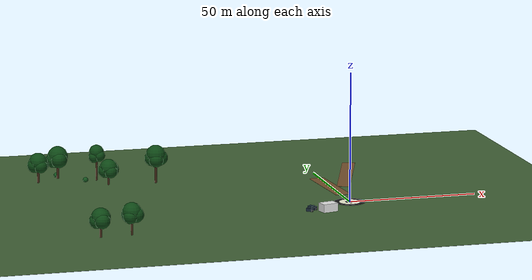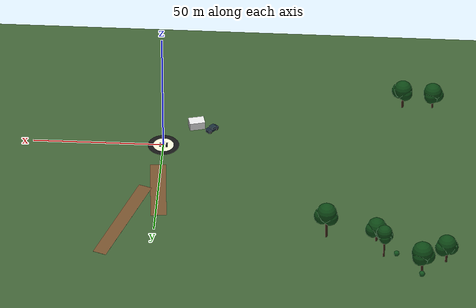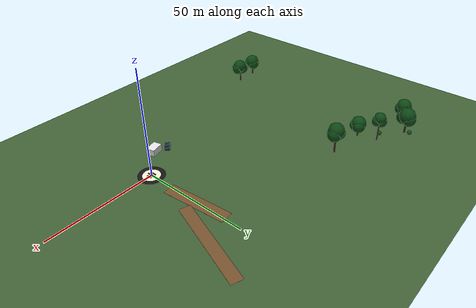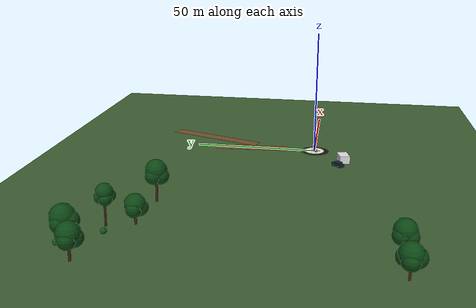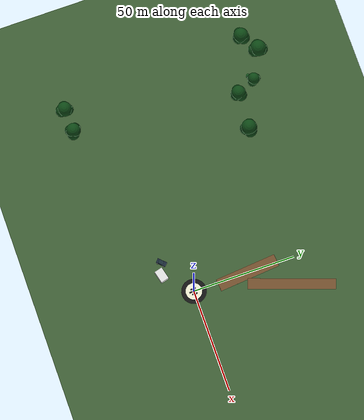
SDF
<sdf version="1.9">
 <world name="forest_monitoring">
  <model name="grassland_base">
   <static>true</static>
   <pose>0 0 -0.05 0 0 0</pose>
   <link name="link">
    <collision name="collision"><geometry><box><size>400 400 0.1</size></box></geometry></collision>
    <visual name="visual">
     <geometry><box><size>400 400 0.1</size></box></geometry>
     <material>
      <ambient>0.22 0.32 0.18 1</ambient>
      <diffuse>0.25 0.38 0.21 1</diffuse>
      <specular>0.1 0.1 0.1 1</specular>
      <pbr><metal><roughness>0.9</roughness><metalness>0.0</metalness></metal></pbr>
     </material>
    </visual>
   </link>
  </model>
  <model name="trail_base">
   <static>true</static>
   <pose>0 27 0.01 0 0 0.08</pose>
   <link name="link">
    <visual name="visual">
     <geometry><box><size>6.0 30 0.03</size></box></geometry>
     <material>
      <ambient>0.36 0.25 0.14 1</ambient>
      <diffuse>0.46 0.32 0.18 1</diffuse>
      <specular>0.1 0.1 0.1 1</specular>
      <pbr><metal><roughness>1.0</roughness><metalness>0.0</metalness></metal></pbr>
     </material>
    </visual>
   </link>
  </model>
  <model name="trail_curve_1">
   <static>true</static>
   <pose>12 45 0.012 0 0 -0.34</pose>
   <link name="link">
    <visual name="visual">
     <geometry><box><size>5.2 42 0.03</size></box></geometry>
     <material>
      <ambient>0.36 0.25 0.14 1</ambient>
      <diffuse>0.46 0.32 0.18 1</diffuse>
      <specular>0.1 0.1 0.1 1</specular>
      <pbr><metal><roughness>1.0</roughness><metalness>0.0</metalness></metal></pbr>
     </material>
    </visual>
   </link>
  </model>
  <model name="drone_landing_pad">
   <static>true</static>
   <pose>0 0 0.035 0 0 0</pose>
   <link name="link">
    <visual name="visual">
     <geometry><cylinder><radius>6.000</radius><length>0.070</length></cylinder></geometry>
     <material>
      <ambient>0.05 0.05 0.05 1</ambient>
      <diffuse>0.08 0.08 0.08 1</diffuse>
      <specular>0.1 0.1 0.1 1</specular>
      <pbr><metal><roughness>0.8</roughness><metalness>0.0</metalness></metal></pbr>
     </material>
    </visual>
   </link>
  </model>
  <model name="landing_pad_inner_ring">
   <static>true</static>
   <pose>0 0 0.085 0 0 0</pose>
   <link name="link">
    <visual name="visual">
     <geometry><cylinder><radius>4.000</radius><length>0.025</length></cylinder></geometry>
     <material>
      <ambient>0.9 0.9 0.82 1</ambient>
      <diffuse>0.95 0.95 0.84 1</diffuse>
      <specular>0.1 0.1 0.1 1</specular>
      <pbr><metal><roughness>0.8</roughness><metalness>0.0</metalness></metal></pbr>
     </material>
    </visual>
   </link>
  </model>
  <model name="landing_pad_h_mark_v">
   <static>true</static>
   <pose>0 0 0.11 0 0 0</pose>
   <link name="link">
    <visual name="visual">
     <geometry><box><size>0.7 4.6 0.025</size></box></geometry>
     <material>
      <ambient>0.04 0.04 0.04 1</ambient>
      <diffuse>0.04 0.04 0.04 1</diffuse>
      <specular>0.1 0.1 0.1 1</specular>
      <pbr><metal><roughness>0.8</roughness><metalness>0.0</metalness></metal></pbr>
     </material>
    </visual>
   </link>
  </model>
  <model name="landing_pad_h_mark_l">
   <static>true</static>
   <pose>-1.25 0 0.115 0 0 0</pose>
   <link name="link">
    <visual name="visual">
     <geometry><box><size>0.7 2.6 0.025</size></box></geometry>
     <material>
      <ambient>0.04 0.04 0.04 1</ambient>
      <diffuse>0.04 0.04 0.04 1</diffuse>
      <specular>0.1 0.1 0.1 1</specular>
      <pbr><metal><roughness>0.8</roughness><metalness>0.0</metalness></metal></pbr>
     </material>
    </visual>
   </link>
  </model>
  <model name="landing_pad_h_mark_r">
   <static>true</static>
   <pose>1.25 0 0.115 0 0 0</pose>
   <link name="link">
    <visual name="visual">
     <geometry><box><size>0.7 2.6 0.025</size></box></geometry>
     <material>
      <ambient>0.04 0.04 0.04 1</ambient>
      <diffuse>0.04 0.04 0.04 1</diffuse>
      <specular>0.1 0.1 0.1 1</specular>
      <pbr><metal><roughness>0.8</roughness><metalness>0.0</metalness></metal></pbr>
     </material>
    </visual>
   </link>
  </model>
  <model name="control_cabin">
   <static>true</static>
   <pose>-12 -12 1.6 0 0 0.25</pose>
   <link name="link">
    <collision name="collision"><geometry><box><size>6 4 3.2</size></box></geometry></collision>
    <visual name="visual">
     <geometry><box><size>6 4 3.2</size></box></geometry>
     <material>
      <ambient>0.8 0.8 0.8 1</ambient>
      <diffuse>0.9 0.9 0.9 1</diffuse>
      <specular>0.1 0.1 0.1 1</specular>
      <pbr><metal><roughness>0.2</roughness><metalness>0.0</metalness></metal></pbr>
     </material>
    </visual>
   </link>
  </model>
  <model name="base_suv">
   <static>true</static>
   <pose>-18 -10 0.05 0 0 0.8</pose>
   <link name="link">
    <collision name="body_collision"><geometry><box><size>4.8 2.2 1.2</size></box></geometry></collision>
    <visual name="body">
     <pose>0 0 0.75 0 0 0</pose>
     <geometry><box><size>4.8 2.2 1.2</size></box></geometry>
     <material>
      <ambient>0.10 0.16 0.22 1</ambient>
      <diffuse>0.10 0.16 0.22 1</diffuse>
      <specular>0.1 0.1 0.1 1</specular>
      <pbr><metal><roughness>0.45</roughness><metalness>0.0</metalness></metal></pbr>
     </material>
    </visual>
    <visual name="cabin">
     <pose>-0.35 0 1.55 0 0 0</pose>
     <geometry><box><size>2.3 1.9 0.9</size></box></geometry>
     <material>
      <ambient>0.08 0.12 0.14 1</ambient>
      <diffuse>0.10 0.18 0.22 1</diffuse>
      <specular>0.1 0.1 0.1 1</specular>
      <pbr><metal><roughness>0.25</roughness><metalness>0.0</metalness></metal></pbr>
     </material>
    </visual>
    <visual name="wheel_0_0">
     <pose>-1.55 -1.2 0.35 1.5708 0 0</pose>
     <geometry><cylinder><radius>0.42</radius><length>0.28</length></cylinder></geometry>
     <material>
      <ambient>0.02 0.02 0.02 1</ambient>
      <diffuse>0.03 0.03 0.03 1</diffuse>
      <specular>0.1 0.1 0.1 1</specular>
      <pbr><metal><roughness>0.7</roughness><metalness>0.0</metalness></metal></pbr>
     </material>
    </visual>
    <visual name="wheel_0_1">
     <pose>-1.55 1.2 0.35 1.5708 0 0</pose>
     <geometry><cylinder><radius>0.42</radius><length>0.28</length></cylinder></geometry>
     <material>
      <ambient>0.02 0.02 0.02 1</ambient>
      <diffuse>0.03 0.03 0.03 1</diffuse>
      <specular>0.1 0.1 0.1 1</specular>
      <pbr><metal><roughness>0.7</roughness><metalness>0.0</metalness></metal></pbr>
     </material>
    </visual>
    <visual name="wheel_1_0">
     <pose>1.55 -1.2 0.35 1.5708 0 0</pose>
     <geometry><cylinder><radius>0.42</radius><length>0.28</length></cylinder></geometry>
     <material>
      <ambient>0.02 0.02 0.02 1</ambient>
      <diffuse>0.03 0.03 0.03 1</diffuse>
      <specular>0.1 0.1 0.1 1</specular>
      <pbr><metal><roughness>0.7</roughness><metalness>0.0</metalness></metal></pbr>
     </material>
    </visual>
    <visual name="wheel_1_1">
     <pose>1.55 1.2 0.35 1.5708 0 0</pose>
     <geometry><cylinder><radius>0.42</radius><length>0.28</length></cylinder></geometry>
     <material>
      <ambient>0.02 0.02 0.02 1</ambient>
      <diffuse>0.03 0.03 0.03 1</diffuse>
      <specular>0.1 0.1 0.1 1</specular>
      <pbr><metal><roughness>0.7</roughness><metalness>0.0</metalness></metal></pbr>
     </material>
    </visual>
   </link>
  </model>
  <model name="tree_0">
   <static>true</static>
   <pose>-99.95 67.79 0 0 0 4.51</pose>
   <link name="link">
    <visual name="trunk">
     <pose>0 0 5.04 0 0 0</pose>
     <geometry><cylinder><radius>0.48</radius><length>10.08</length></cylinder></geometry>
     <material>
      <ambient>0.18 0.11 0.06 1</ambient>
      <diffuse>0.24 0.15 0.08 1</diffuse>
      <specular>0.1 0.1 0.1 1</specular>
      <pbr><metal><roughness>0.9</roughness><metalness>0.0</metalness></metal></pbr>
     </material>
    </visual>
    <visual name="canopy_0">
     <pose>0.00 0.00 8.87 0 0 0</pose>
     <geometry><sphere><radius>4.02</radius></sphere></geometry>
     <material>
      <ambient>0.03 0.16 0.05 1</ambient>
      <diffuse>0.05 0.28 0.08 1</diffuse>
      <specular>0.1 0.1 0.1 1</specular>
      <pbr><metal><roughness>1.0</roughness><metalness>0.0</metalness></metal></pbr>
     </material>
    </visual>
    <visual name="canopy_1">
     <pose>1.69 0.48 7.86 0 0 0</pose>
     <geometry><sphere><radius>3.29</radius></sphere></geometry>
     <material>
      <ambient>0.03 0.16 0.05 1</ambient>
      <diffuse>0.05 0.28 0.08 1</diffuse>
      <specular>0.1 0.1 0.1 1</specular>
      <pbr><metal><roughness>1.0</roughness><metalness>0.0</metalness></metal></pbr>
     </material>
    </visual>
    <visual name="canopy_2">
     <pose>-1.53 0.32 7.66 0 0 0</pose>
     <geometry><sphere><radius>3.13</radius></sphere></geometry>
     <material>
      <ambient>0.03 0.16 0.05 1</ambient>
      <diffuse>0.05 0.28 0.08 1</diffuse>
      <specular>0.1 0.1 0.1 1</specular>
      <pbr><metal><roughness>1.0</roughness><metalness>0.0</metalness></metal></pbr>
     </material>
    </visual>
    <visual name="canopy_3">
     <pose>0.16 -1.69 7.46 0 0 0</pose>
     <geometry><sphere><radius>3.05</radius></sphere></geometry>
     <material>
      <ambient>0.03 0.16 0.05 1</ambient>
      <diffuse>0.05 0.28 0.08 1</diffuse>
      <specular>0.1 0.1 0.1 1</specular>
      <pbr><metal><roughness>1.0</roughness><metalness>0.0</metalness></metal></pbr>
     </material>
    </visual>
   </link>
  </model>
  <model name="tree_5">
   <static>true</static>
   <pose>-108.78 62.20 0 0 0 0.30</pose>
   <link name="link">
    <visual name="trunk">
     <pose>0 0 4.67 0 0 0</pose>
     <geometry><cylinder><radius>0.44</radius><length>9.33</length></cylinder></geometry>
     <material>
      <ambient>0.18 0.11 0.06 1</ambient>
      <diffuse>0.24 0.15 0.08 1</diffuse>
      <specular>0.1 0.1 0.1 1</specular>
      <pbr><metal><roughness>0.9</roughness><metalness>0.0</metalness></metal></pbr>
     </material>
    </visual>
    <visual name="canopy_0">
     <pose>0.00 0.00 8.21 0 0 0</pose>
     <geometry><sphere><radius>3.70</radius></sphere></geometry>
     <material>
      <ambient>0.03 0.16 0.05 1</ambient>
      <diffuse>0.05 0.28 0.08 1</diffuse>
      <specular>0.1 0.1 0.1 1</specular>
      <pbr><metal><roughness>1.0</roughness><metalness>0.0</metalness></metal></pbr>
     </material>
    </visual>
    <visual name="canopy_1">
     <pose>1.55 0.44 7.28 0 0 0</pose>
     <geometry><sphere><radius>3.03</radius></sphere></geometry>
     <material>
      <ambient>0.03 0.16 0.05 1</ambient>
      <diffuse>0.05 0.28 0.08 1</diffuse>
      <specular>0.1 0.1 0.1 1</specular>
      <pbr><metal><roughness>1.0</roughness><metalness>0.0</metalness></metal></pbr>
     </material>
    </visual>
    <visual name="canopy_2">
     <pose>-1.41 0.30 7.09 0 0 0</pose>
     <geometry><sphere><radius>2.89</radius></sphere></geometry>
     <material>
      <ambient>0.03 0.16 0.05 1</ambient>
      <diffuse>0.05 0.28 0.08 1</diffuse>
      <specular>0.1 0.1 0.1 1</specular>
      <pbr><metal><roughness>1.0</roughness><metalness>0.0</metalness></metal></pbr>
     </material>
    </visual>
    <visual name="canopy_3">
     <pose>0.15 -1.55 6.91 0 0 0</pose>
     <geometry><sphere><radius>2.81</radius></sphere></geometry>
     <material>
      <ambient>0.03 0.16 0.05 1</ambient>
      <diffuse>0.05 0.28 0.08 1</diffuse>
      <specular>0.1 0.1 0.1 1</specular>
      <pbr><metal><roughness>1.0</roughness><metalness>0.0</metalness></metal></pbr>
     </material>
    </visual>
   </link>
  </model>
  <model name="tree_8">
   <static>true</static>
   <pose>-82.85 51.79 0 0 0 0.23</pose>
   <link name="link">
    <visual name="trunk">
     <pose>0 0 3.78 0 0 0</pose>
     <geometry><cylinder><radius>0.43</radius><length>7.57</length></cylinder></geometry>
     <material>
      <ambient>0.18 0.11 0.06 1</ambient>
      <diffuse>0.24 0.15 0.08 1</diffuse>
      <specular>0.1 0.1 0.1 1</specular>
      <pbr><metal><roughness>0.9</roughness><metalness>0.0</metalness></metal></pbr>
     </material>
    </visual>
    <visual name="canopy_0">
     <pose>0.00 0.00 6.66 0 0 0</pose>
     <geometry><sphere><radius>3.56</radius></sphere></geometry>
     <material>
      <ambient>0.03 0.16 0.05 1</ambient>
      <diffuse>0.05 0.28 0.08 1</diffuse>
      <specular>0.1 0.1 0.1 1</specular>
      <pbr><metal><roughness>1.0</roughness><metalness>0.0</metalness></metal></pbr>
     </material>
    </visual>
    <visual name="canopy_1">
     <pose>1.50 0.43 5.90 0 0 0</pose>
     <geometry><sphere><radius>2.92</radius></sphere></geometry>
     <material>
      <ambient>0.03 0.16 0.05 1</ambient>
      <diffuse>0.05 0.28 0.08 1</diffuse>
      <specular>0.1 0.1 0.1 1</specular>
      <pbr><metal><roughness>1.0</roughness><metalness>0.0</metalness></metal></pbr>
     </material>
    </visual>
    <visual name="canopy_2">
     <pose>-1.35 0.29 5.75 0 0 0</pose>
     <geometry><sphere><radius>2.78</radius></sphere></geometry>
     <material>
      <ambient>0.03 0.16 0.05 1</ambient>
      <diffuse>0.05 0.28 0.08 1</diffuse>
      <specular>0.1 0.1 0.1 1</specular>
      <pbr><metal><roughness>1.0</roughness><metalness>0.0</metalness></metal></pbr>
     </material>
    </visual>
    <visual name="canopy_3">
     <pose>0.14 -1.50 5.60 0 0 0</pose>
     <geometry><sphere><radius>2.71</radius></sphere></geometry>
     <material>
      <ambient>0.03 0.16 0.05 1</ambient>
      <diffuse>0.05 0.28 0.08 1</diffuse>
      <specular>0.1 0.1 0.1 1</specular>
      <pbr><metal><roughness>1.0</roughness><metalness>0.0</metalness></metal></pbr>
     </material>
    </visual>
   </link>
  </model>
  <model name="tree_9">
   <static>true</static>
   <pose>-85.83 60.49 0 0 0 5.14</pose>
   <link name="link">
    <visual name="trunk">
     <pose>0 0 6.45 0 0 0</pose>
     <geometry><cylinder><radius>0.35</radius><length>12.89</length></cylinder></geometry>
     <material>
      <ambient>0.18 0.11 0.06 1</ambient>
      <diffuse>0.24 0.15 0.08 1</diffuse>
      <specular>0.1 0.1 0.1 1</specular>
      <pbr><metal><roughness>0.9</roughness><metalness>0.0</metalness></metal></pbr>
     </material>
    </visual>
    <visual name="canopy_0">
     <pose>0.00 0.00 11.34 0 0 0</pose>
     <geometry><sphere><radius>2.90</radius></sphere></geometry>
     <material>
      <ambient>0.03 0.16 0.05 1</ambient>
      <diffuse>0.05 0.28 0.08 1</diffuse>
      <specular>0.1 0.1 0.1 1</specular>
      <pbr><metal><roughness>1.0</roughness><metalness>0.0</metalness></metal></pbr>
     </material>
    </visual>
    <visual name="canopy_1">
     <pose>1.22 0.35 10.06 0 0 0</pose>
     <geometry><sphere><radius>2.38</radius></sphere></geometry>
     <material>
      <ambient>0.03 0.16 0.05 1</ambient>
      <diffuse>0.05 0.28 0.08 1</diffuse>
      <specular>0.1 0.1 0.1 1</specular>
      <pbr><metal><roughness>1.0</roughness><metalness>0.0</metalness></metal></pbr>
     </material>
    </visual>
    <visual name="canopy_2">
     <pose>-1.10 0.23 9.80 0 0 0</pose>
     <geometry><sphere><radius>2.27</radius></sphere></geometry>
     <material>
      <ambient>0.03 0.16 0.05 1</ambient>
      <diffuse>0.05 0.28 0.08 1</diffuse>
      <specular>0.1 0.1 0.1 1</specular>
      <pbr><metal><roughness>1.0</roughness><metalness>0.0</metalness></metal></pbr>
     </material>
    </visual>
    <visual name="canopy_3">
     <pose>0.12 -1.22 9.54 0 0 0</pose>
     <geometry><sphere><radius>2.21</radius></sphere></geometry>
     <material>
      <ambient>0.03 0.16 0.05 1</ambient>
      <diffuse>0.05 0.28 0.08 1</diffuse>
      <specular>0.1 0.1 0.1 1</specular>
      <pbr><metal><roughness>1.0</roughness><metalness>0.0</metalness></metal></pbr>
     </material>
    </visual>
   </link>
  </model>
  <model name="tree_11">
   <static>true</static>
   <pose>-64.23 50.42 0 0 0 6.06</pose>
   <link name="link">
    <visual name="trunk">
     <pose>0 0 6.39 0 0 0</pose>
     <geometry><cylinder><radius>0.46</radius><length>12.78</length></cylinder></geometry>
     <material>
      <ambient>0.18 0.11 0.06 1</ambient>
      <diffuse>0.24 0.15 0.08 1</diffuse>
      <specular>0.1 0.1 0.1 1</specular>
      <pbr><metal><roughness>0.9</roughness><metalness>0.0</metalness></metal></pbr>
     </material>
    </visual>
    <visual name="canopy_0">
     <pose>0.00 0.00 11.25 0 0 0</pose>
     <geometry><sphere><radius>3.82</radius></sphere></geometry>
     <material>
      <ambient>0.03 0.16 0.05 1</ambient>
      <diffuse>0.05 0.28 0.08 1</diffuse>
      <specular>0.1 0.1 0.1 1</specular>
      <pbr><metal><roughness>1.0</roughness><metalness>0.0</metalness></metal></pbr>
     </material>
    </visual>
    <visual name="canopy_1">
     <pose>1.60 0.46 9.97 0 0 0</pose>
     <geometry><sphere><radius>3.13</radius></sphere></geometry>
     <material>
      <ambient>0.03 0.16 0.05 1</ambient>
      <diffuse>0.05 0.28 0.08 1</diffuse>
      <specular>0.1 0.1 0.1 1</specular>
      <pbr><metal><roughness>1.0</roughness><metalness>0.0</metalness></metal></pbr>
     </material>
    </visual>
    <visual name="canopy_2">
     <pose>-1.45 0.31 9.71 0 0 0</pose>
     <geometry><sphere><radius>2.98</radius></sphere></geometry>
     <material>
      <ambient>0.03 0.16 0.05 1</ambient>
      <diffuse>0.05 0.28 0.08 1</diffuse>
      <specular>0.1 0.1 0.1 1</specular>
      <pbr><metal><roughness>1.0</roughness><metalness>0.0</metalness></metal></pbr>
     </material>
    </visual>
    <visual name="canopy_3">
     <pose>0.15 -1.60 9.46 0 0 0</pose>
     <geometry><sphere><radius>2.90</radius></sphere></geometry>
     <material>
      <ambient>0.03 0.16 0.05 1</ambient>
      <diffuse>0.05 0.28 0.08 1</diffuse>
      <specular>0.1 0.1 0.1 1</specular>
      <pbr><metal><roughness>1.0</roughness><metalness>0.0</metalness></metal></pbr>
     </material>
    </visual>
   </link>
  </model>
  <model name="tree_55">
   <static>true</static>
   <pose>-91.03 -28.87 0 0 0 5.65</pose>
   <link name="link">
    <visual name="trunk">
     <pose>0 0 4.90 0 0 0</pose>
     <geometry><cylinder><radius>0.43</radius><length>9.80</length></cylinder></geometry>
     <material>
      <ambient>0.18 0.11 0.06 1</ambient>
      <diffuse>0.24 0.15 0.08 1</diffuse>
      <specular>0.1 0.1 0.1 1</specular>
      <pbr><metal><roughness>0.9</roughness><metalness>0.0</metalness></metal></pbr>
     </material>
    </visual>
    <visual name="canopy_0">
     <pose>0.00 0.00 8.62 0 0 0</pose>
     <geometry><sphere><radius>3.56</radius></sphere></geometry>
     <material>
      <ambient>0.03 0.16 0.05 1</ambient>
      <diffuse>0.05 0.28 0.08 1</diffuse>
      <specular>0.1 0.1 0.1 1</specular>
      <pbr><metal><roughness>1.0</roughness><metalness>0.0</metalness></metal></pbr>
     </material>
    </visual>
    <visual name="canopy_1">
     <pose>1.49 0.43 7.64 0 0 0</pose>
     <geometry><sphere><radius>2.92</radius></sphere></geometry>
     <material>
      <ambient>0.03 0.16 0.05 1</ambient>
      <diffuse>0.05 0.28 0.08 1</diffuse>
      <specular>0.1 0.1 0.1 1</specular>
      <pbr><metal><roughness>1.0</roughness><metalness>0.0</metalness></metal></pbr>
     </material>
    </visual>
    <visual name="canopy_2">
     <pose>-1.35 0.28 7.44 0 0 0</pose>
     <geometry><sphere><radius>2.78</radius></sphere></geometry>
     <material>
      <ambient>0.03 0.16 0.05 1</ambient>
      <diffuse>0.05 0.28 0.08 1</diffuse>
      <specular>0.1 0.1 0.1 1</specular>
      <pbr><metal><roughness>1.0</roughness><metalness>0.0</metalness></metal></pbr>
     </material>
    </visual>
    <visual name="canopy_3">
     <pose>0.14 -1.49 7.25 0 0 0</pose>
     <geometry><sphere><radius>2.71</radius></sphere></geometry>
     <material>
      <ambient>0.03 0.16 0.05 1</ambient>
      <diffuse>0.05 0.28 0.08 1</diffuse>
      <specular>0.1 0.1 0.1 1</specular>
      <pbr><metal><roughness>1.0</roughness><metalness>0.0</metalness></metal></pbr>
     </material>
    </visual>
   </link>
  </model>
  <model name="tree_59">
   <static>true</static>
   <pose>-102.62 -29.43 0 0 0 4.54</pose>
   <link name="link">
    <visual name="trunk">
     <pose>0 0 4.20 0 0 0</pose>
     <geometry><cylinder><radius>0.43</radius><length>8.39</length></cylinder></geometry>
     <material>
      <ambient>0.18 0.11 0.06 1</ambient>
      <diffuse>0.24 0.15 0.08 1</diffuse>
      <specular>0.1 0.1 0.1 1</specular>
      <pbr><metal><roughness>0.9</roughness><metalness>0.0</metalness></metal></pbr>
     </material>
    </visual>
    <visual name="canopy_0">
     <pose>0.00 0.00 7.39 0 0 0</pose>
     <geometry><sphere><radius>3.62</radius></sphere></geometry>
     <material>
      <ambient>0.03 0.16 0.05 1</ambient>
      <diffuse>0.05 0.28 0.08 1</diffuse>
      <specular>0.1 0.1 0.1 1</specular>
      <pbr><metal><roughness>1.0</roughness><metalness>0.0</metalness></metal></pbr>
     </material>
    </visual>
    <visual name="canopy_1">
     <pose>1.52 0.43 6.55 0 0 0</pose>
     <geometry><sphere><radius>2.97</radius></sphere></geometry>
     <material>
      <ambient>0.03 0.16 0.05 1</ambient>
      <diffuse>0.05 0.28 0.08 1</diffuse>
      <specular>0.1 0.1 0.1 1</specular>
      <pbr><metal><roughness>1.0</roughness><metalness>0.0</metalness></metal></pbr>
     </material>
    </visual>
    <visual name="canopy_2">
     <pose>-1.37 0.29 6.38 0 0 0</pose>
     <geometry><sphere><radius>2.82</radius></sphere></geometry>
     <material>
      <ambient>0.03 0.16 0.05 1</ambient>
      <diffuse>0.05 0.28 0.08 1</diffuse>
      <specular>0.1 0.1 0.1 1</specular>
      <pbr><metal><roughness>1.0</roughness><metalness>0.0</metalness></metal></pbr>
     </material>
    </visual>
    <visual name="canopy_3">
     <pose>0.14 -1.52 6.21 0 0 0</pose>
     <geometry><sphere><radius>2.75</radius></sphere></geometry>
     <material>
      <ambient>0.03 0.16 0.05 1</ambient>
      <diffuse>0.05 0.28 0.08 1</diffuse>
      <specular>0.1 0.1 0.1 1</specular>
      <pbr><metal><roughness>1.0</roughness><metalness>0.0</metalness></metal></pbr>
     </material>
    </visual>
   </link>
  </model>
  <model name="bush_0">
   <static>true</static>
   <pose>-100.06 70.34 0.65 0 0 0</pose>
   <link name="link">
    <visual name="visual">
     <geometry><sphere><radius>1.109</radius></sphere></geometry>
     <material>
      <ambient>0.04 0.20 0.07 1</ambient>
      <diffuse>0.07 0.32 0.11 1</diffuse>
      <specular>0.1 0.1 0.1 1</specular>
      <pbr><metal><roughness>0.8</roughness><metalness>0.0</metalness></metal></pbr>
     </material>
    </visual>
   </link>
  </model>
  <model name="bush_3">
   <static>true</static>
   <pose>-90.54 59.45 0.65 0 0 0</pose>
   <link name="link">
    <visual name="visual">
     <geometry><sphere><radius>1.067</radius></sphere></geometry>
     <material>
      <ambient>0.04 0.20 0.07 1</ambient>
      <diffuse>0.07 0.32 0.11 1</diffuse>
      <specular>0.1 0.1 0.1 1</specular>
      <pbr><metal><roughness>0.8</roughness><metalness>0.0</metalness></metal></pbr>
     </material>
    </visual>
   </link>
  </model>
 </world>
</sdf>
